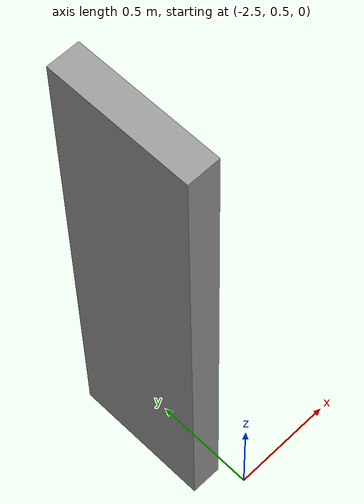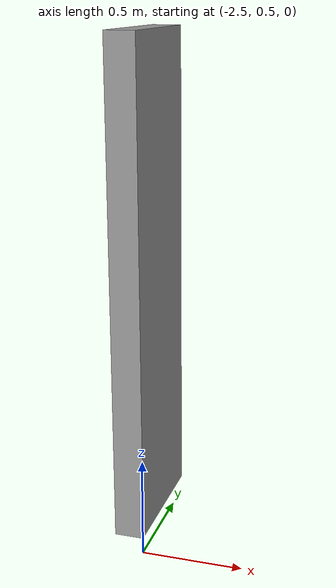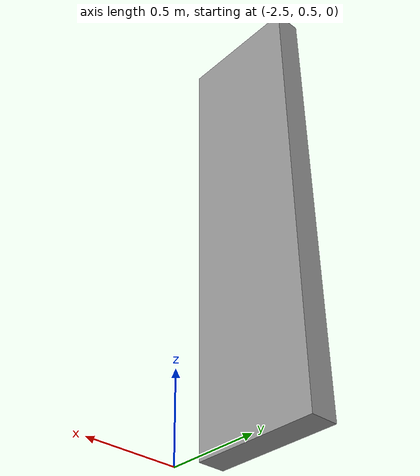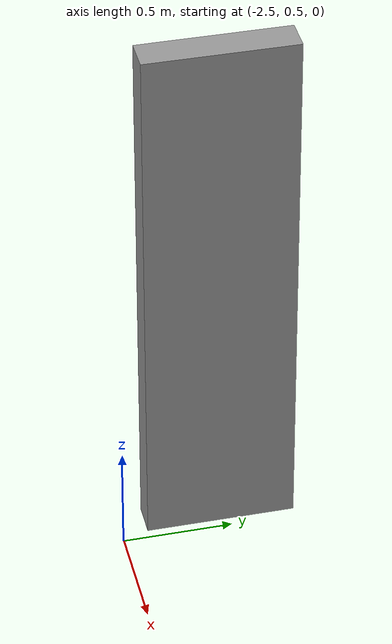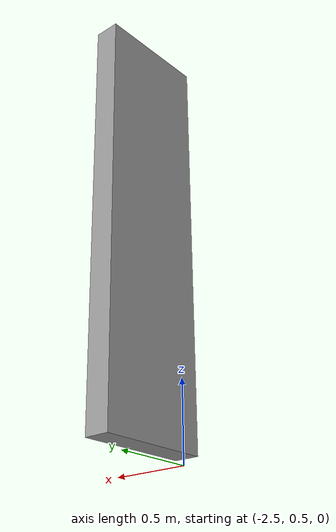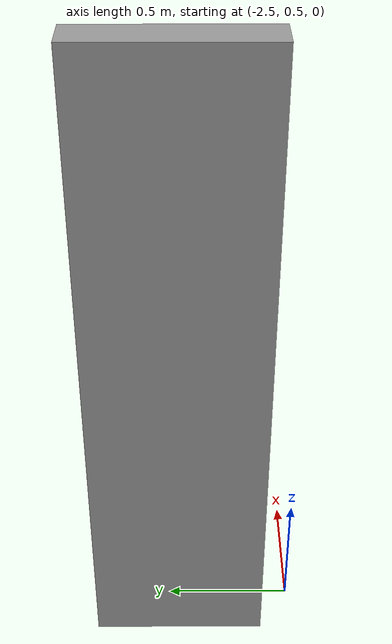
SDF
<?xml version='1.0'?>
<sdf version='1.6'>
  <model name='wall_04'>
    <pose frame=''>-2.61809 0.959165 0 0 -0 0</pose>
    <link name='Wall_0'>
      <collision name='Wall_0_Collision'>
        <geometry>
          <box>
            <size>0.68 0.15 2.5</size>
          </box>
        </geometry>
        <pose frame=''>0 0 1.25 0 -0 0</pose>
      </collision>
      <visual name='Wall_0_Visual'>
        <pose frame=''>0 0 1.25 0 -0 0</pose>
        <geometry>
          <box>
            <size>0.68 0.15 2.5</size>
          </box>
        </geometry>
        <material>
          <script>
            <uri>file://media/materials/scripts/gazebo.material</uri>
            <name>Gazebo/Grey</name>
          </script>
          <ambient>1 1 1 1</ambient>
        </material>
        <meta>
          <layer>0</layer>
        </meta>
      </visual>
      <pose frame=''>0 0 0 0 -0 1.5708</pose>
    </link>
    <static>1</static>
  </model>
</sdf>
